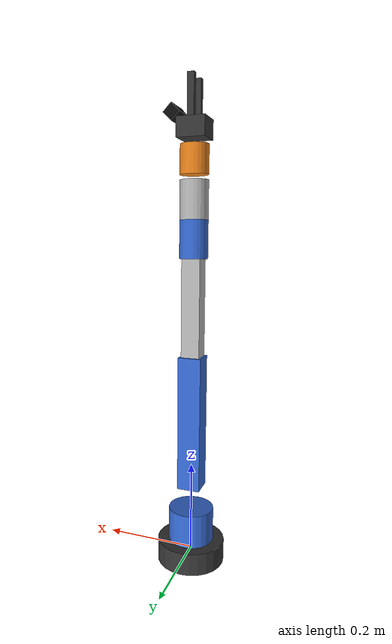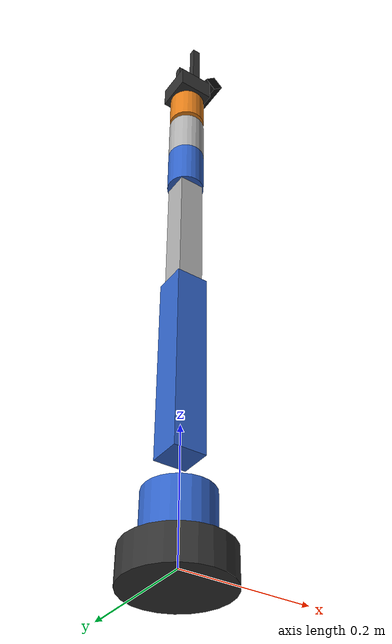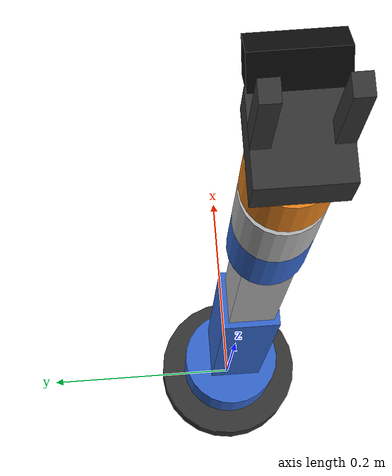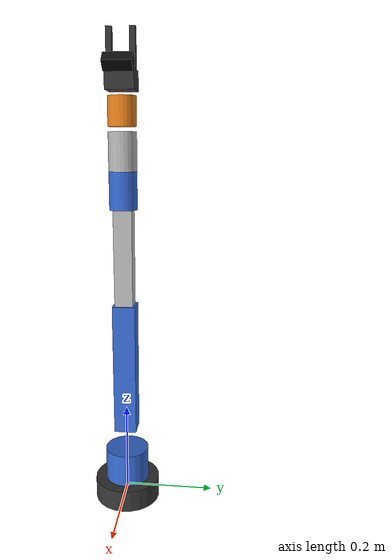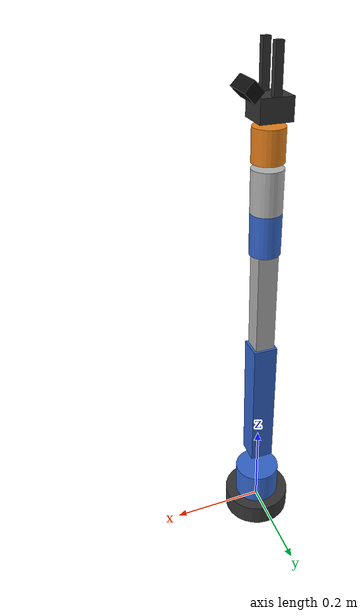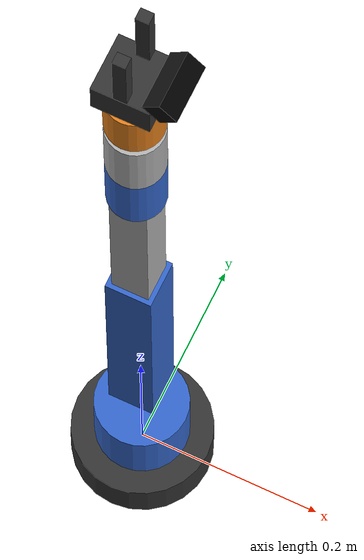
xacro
<?xml version="1.0"?>
<robot xmlns:xacro="http://www.ros.org/wiki/xacro" name="arm6dof">
    <xacro:arg name="initial_positions_file" default="initial_positions.yaml" />

    <!-- Import arm6dof urdf file -->
    <xacro:include filename="$(find robot_description)/urdf/robot_2.urdf.xacro" />

    <!-- Import control_xacro -->
    <xacro:include filename="arm6dof.ros2_control.xacro" />

    <xacro:arm6dof_ros2_control name="FakeSystem" initial_positions_file="$(arg initial_positions_file)"/>

</robot>

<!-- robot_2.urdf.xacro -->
<robot xmlns:xacro="http://www.ros.org/wiki/xacro" name="arm6dof">

  <!-- ── Materials ─────────────────────────────────────────────── -->
  <material name="dark_grey">  <color rgba="0.20 0.20 0.20 1"/> </material>
  <material name="blue">       <color rgba="0.20 0.40 0.80 1"/> </material>
  <material name="light_grey"> <color rgba="0.70 0.70 0.70 1"/> </material>
  <material name="orange">     <color rgba="0.90 0.50 0.10 1"/> </material>
  <material name="black">      <color rgba="0.05 0.05 0.05 1"/> </material>

  <!-- ── Inertia helpers ───────────────────────────────────────── -->
  <xacro:macro name="inertial_cyl" params="mass r h *origin">
    <inertial>
      <xacro:insert_block name="origin"/>
      <mass value="${mass}"/>
      <inertia ixx="${mass*(3*r*r+h*h)/12}" ixy="0" ixz="0"
               iyy="${mass*(3*r*r+h*h)/12}" iyz="0"
               izz="${mass*r*r/2}"/>
    </inertial>
  </xacro:macro>

  <xacro:macro name="inertial_box" params="mass x y z *origin">
    <inertial>
      <xacro:insert_block name="origin"/>
      <mass value="${mass}"/>
      <inertia ixx="${mass*(y*y+z*z)/12}" ixy="0" ixz="0"
               iyy="${mass*(x*x+z*z)/12}" iyz="0"
               izz="${mass*(x*x+y*y)/12}"/>
    </inertial>
  </xacro:macro>

  <!--  LINKS                                                       -->

  <link name="world"/>

  <link name="base_link">
    <visual>
      <geometry><cylinder radius="0.075" length="0.05"/></geometry>
      <material name="dark_grey"/>
    </visual>
    <collision>
      <geometry><cylinder radius="0.075" length="0.05"/></geometry>
    </collision>
    <xacro:inertial_cyl mass="2.0" r="0.075" h="0.05">
      <origin xyz="0 0 0" rpy="0 0 0"/>
    </xacro:inertial_cyl>
  </link>

  <link name="link1">
    <visual>
      <geometry><cylinder radius="0.05" length="0.10"/></geometry>
      <material name="blue"/>
    </visual>
    <collision>
      <geometry><cylinder radius="0.05" length="0.10"/></geometry>
    </collision>
    <xacro:inertial_cyl mass="1.5" r="0.05" h="0.10">
      <origin xyz="0 0 0" rpy="0 0 0"/>
    </xacro:inertial_cyl>
  </link>

  <link name="link2">
    <visual>
      <origin xyz="0 0 0.15"/>
      <geometry><box size="0.05 0.05 0.30"/></geometry>
      <material name="blue"/>
    </visual>
    <collision>
      <origin xyz="0 0 0.15"/>
      <geometry><box size="0.05 0.05 0.30"/></geometry>
    </collision>
    <xacro:inertial_box mass="1.2" x="0.05" y="0.05" z="0.30">
      <origin xyz="0 0 0.15" rpy="0 0 0"/>
    </xacro:inertial_box>
  </link>

  <link name="link3">
    <visual>
      <origin xyz="0 0 0.125"/>
      <geometry><box size="0.04 0.04 0.25"/></geometry>
      <material name="light_grey"/>
    </visual>
    <collision>
      <origin xyz="0 0 0.125"/>
      <geometry><box size="0.04 0.04 0.25"/></geometry>
    </collision>
    <xacro:inertial_box mass="0.9" x="0.04" y="0.04" z="0.25">
      <origin xyz="0 0 0.125" rpy="0 0 0"/>
    </xacro:inertial_box>
  </link>

  <link name="link4">
    <visual>
      <geometry><cylinder radius="0.03" length="0.08"/></geometry>
      <material name="blue"/>
    </visual>
    <collision>
      <geometry><cylinder radius="0.03" length="0.08"/></geometry>
    </collision>
    <xacro:inertial_cyl mass="0.5" r="0.03" h="0.08">
      <origin xyz="0 0 0" rpy="0 0 0"/>
    </xacro:inertial_cyl>
  </link>

  <link name="link5">
    <visual>
      <geometry><cylinder radius="0.03" length="0.08"/></geometry>
      <material name="light_grey"/>
    </visual>
    <collision>
      <geometry><cylinder radius="0.03" length="0.08"/></geometry>
    </collision>
    <xacro:inertial_cyl mass="0.5" r="0.03" h="0.08">
      <origin xyz="0 0 0" rpy="0 0 0"/>
    </xacro:inertial_cyl>
  </link>

  <link name="link6">
    <visual>
      <geometry><cylinder radius="0.03" length="0.06"/></geometry>
      <material name="orange"/>
    </visual>
    <collision>
      <geometry><cylinder radius="0.03" length="0.06"/></geometry>
    </collision>
    <xacro:inertial_cyl mass="0.3" r="0.03" h="0.06">
      <origin xyz="0 0 0" rpy="0 0 0"/>
    </xacro:inertial_cyl>
  </link>

  <link name="gripper_base">
    <visual>
      <geometry><box size="0.06 0.06 0.04"/></geometry>
      <material name="dark_grey"/>
    </visual>
    <collision>
      <geometry><box size="0.06 0.06 0.04"/></geometry>
    </collision>
    <xacro:inertial_box mass="0.20" x="0.06" y="0.06" z="0.04">
      <origin xyz="0 0 0" rpy="0 0 0"/>
    </xacro:inertial_box>
  </link>

  <link name="finger_left">
    <visual>
      <origin xyz="0 0 0.04"/>
      <geometry><box size="0.014 0.012 0.08"/></geometry>
      <material name="dark_grey"/>
    </visual>
    <collision>
      <origin xyz="0 0 0.04"/>
      <geometry><box size="0.014 0.012 0.08"/></geometry>
    </collision>
    <xacro:inertial_box mass="0.05" x="0.014" y="0.012" z="0.08">
      <origin xyz="0 0 0.04" rpy="0 0 0"/>
    </xacro:inertial_box>
  </link>

  <link name="finger_right">
    <visual>
      <origin xyz="0 0 0.04"/>
      <geometry><box size="0.014 0.012 0.08"/></geometry>
      <material name="dark_grey"/>
    </visual>
    <collision>
      <origin xyz="0 0 0.04"/>
      <geometry><box size="0.014 0.012 0.08"/></geometry>
    </collision>
    <xacro:inertial_box mass="0.05" x="0.014" y="0.012" z="0.08">
      <origin xyz="0 0 0.04" rpy="0 0 0"/>
    </xacro:inertial_box>
  </link>

  <!-- ── Depth camera body ─────────────────────────────────────── -->
  <!-- Mounted on gripper_base, offset to the back (+X) so it has  -->
  <!-- a clear view of the workspace below the gripper.             -->
  <link name="camera_link">
    <visual>
      <geometry><box size="0.025 0.060 0.025"/></geometry>
      <material name="black"/>
    </visual>
    <collision>
      <geometry><box size="0.025 0.060 0.025"/></geometry>
    </collision>
    <xacro:inertial_box mass="0.05" x="0.025" y="0.060" z="0.025">
      <origin xyz="0 0 0" rpy="0 0 0"/>
    </xacro:inertial_box>
  </link>

  <!-- ROS optical frame: Z forward, X right, Y down -->
  <link name="camera_optical_frame"/>

  <!--  JOINTS                                                      -->

  <joint name="world_to_base" type="fixed">
    <parent link="world"/>
    <child  link="base_link"/>
    <origin xyz="0 0 0" rpy="0 0 0"/>
  </joint>

  <joint name="joint1" type="revolute">
    <parent link="base_link"/>
    <child  link="link1"/>
    <origin xyz="0 0 0.05" rpy="0 0 0"/>
    <axis xyz="0 0 1"/>
    <limit lower="${-pi}"   upper="${pi}"   effort="150" velocity="${pi}"/>
    <dynamics damping="0.5" friction="0.1"/>
  </joint>

  <joint name="joint2" type="revolute">
    <parent link="link1"/>
    <child  link="link2"/>
    <origin xyz="0 0 0.10" rpy="0 0 0"/>
    <axis xyz="0 1 0"/>
    <limit lower="${-pi/2}" upper="${pi/2}" effort="150" velocity="${pi}"/>
    <dynamics damping="0.5" friction="0.1"/>
  </joint>

  <joint name="joint3" type="revolute">
    <parent link="link2"/>
    <child  link="link3"/>
    <origin xyz="0 0 0.30" rpy="0 0 0"/>
    <axis xyz="0 1 0"/>
    <limit lower="${-3*pi/4}" upper="${3*pi/4}" effort="100" velocity="${pi}"/>
    <dynamics damping="0.5" friction="0.1"/>
  </joint>

  <joint name="joint4" type="revolute">
    <parent link="link3"/>
    <child  link="link4"/>
    <origin xyz="0 0 0.25" rpy="0 0 0"/>
    <axis xyz="1 0 0"/>
    <limit lower="${-pi}"   upper="${pi}"   effort="50" velocity="${pi}"/>
    <dynamics damping="0.3" friction="0.05"/>
  </joint>

  <joint name="joint5" type="revolute">
    <parent link="link4"/>
    <child  link="link5"/>
    <origin xyz="0 0 0.08" rpy="0 0 0"/>
    <axis xyz="0 1 0"/>
    <limit lower="${-pi/2}" upper="${pi/2}" effort="50" velocity="${pi}"/>
    <dynamics damping="0.3" friction="0.05"/>
  </joint>

  <joint name="joint6" type="revolute">
    <parent link="link5"/>
    <child  link="link6"/>
    <origin xyz="0 0 0.08" rpy="0 0 0"/>
    <axis xyz="0 0 1"/>
    <limit lower="${-pi}"   upper="${pi}"   effort="30" velocity="${pi}"/>
    <dynamics damping="0.2" friction="0.05"/>
  </joint>

  <joint name="gripper_base_joint" type="fixed">
    <parent link="link6"/>
    <child  link="gripper_base"/>
    <origin xyz="0 0 0.06" rpy="0 0 0"/>
  </joint>

  <joint name="finger_left_joint" type="prismatic">
    <parent link="gripper_base"/>
    <child  link="finger_left"/>
    <origin xyz="0  0.024 0.02" rpy="0 0 0"/>
    <axis xyz="0 1 0"/>
    <limit lower="0.0" upper="0.03" effort="200" velocity="0.1"/>
    <dynamics damping="0.1" friction="0.05"/>
  </joint>

  <joint name="finger_right_joint" type="prismatic">
    <parent link="gripper_base"/>
    <child  link="finger_right"/>
    <origin xyz="0 -0.024 0.02" rpy="0 0 0"/>
    <axis xyz="0 -1 0"/>
    <limit lower="0.0" upper="0.03" effort="200" velocity="0.1"/>
    <dynamics damping="0.1" friction="0.05"/>
    <mimic joint="finger_left_joint" multiplier="1" offset="0"/>
  </joint>

  <!-- camera_link sits behind and above the gripper palm, looking down -->
  <!-- xyz: +X = back along forearm, Z = up from gripper_base frame     -->
  <joint name="camera_joint" type="fixed">
    <parent link="gripper_base"/>
    <child  link="camera_link"/>
    <origin xyz="0.04 0 0.03" rpy="0 ${pi/4} 0"/>
  </joint>

  <!-- optical frame: rotate so Z points forward out of the lens        -->
  <joint name="camera_optical_joint" type="fixed">
    <parent link="camera_link"/>
    <child  link="camera_optical_frame"/>
    <origin xyz="0 0 0" rpy="${-pi/2} 0 ${-pi/2}"/>
  </joint>

  <!--  ROS2 CONTROL                                                -->

  <ros2_control name="arm6dof_system" type="system">
    <hardware>
      <plugin>gz_ros2_control/GazeboSimSystem</plugin>
    </hardware>

    <joint name="joint1">
      <command_interface name="position">
        <param name="min">${-pi}</param>
        <param name="max">${pi}</param>
      </command_interface>
      <state_interface name="position"><param name="initial_value">0.0</param></state_interface>
      <state_interface name="velocity"/>
      <state_interface name="effort"/>
    </joint>

    <joint name="joint2">
      <command_interface name="position">
        <param name="min">${-pi/2}</param>
        <param name="max">${pi/2}</param>
      </command_interface>
      <state_interface name="position"><param name="initial_value">0.0</param></state_interface>
      <state_interface name="velocity"/>
      <state_interface name="effort"/>
    </joint>

    <joint name="joint3">
      <command_interface name="position">
        <param name="min">${-3*pi/4}</param>
        <param name="max">${3*pi/4}</param>
      </command_interface>
      <state_interface name="position"><param name="initial_value">0.0</param></state_interface>
      <state_interface name="velocity"/>
      <state_interface name="effort"/>
    </joint>

    <joint name="joint4">
      <command_interface name="position">
        <param name="min">${-pi}</param>
        <param name="max">${pi}</param>
      </command_interface>
      <state_interface name="position"><param name="initial_value">0.0</param></state_interface>
      <state_interface name="velocity"/>
      <state_interface name="effort"/>
    </joint>

    <joint name="joint5">
      <command_interface name="position">
        <param name="min">${-pi/2}</param>
        <param name="max">${pi/2}</param>
      </command_interface>
      <state_interface name="position"><param name="initial_value">0.0</param></state_interface>
      <state_interface name="velocity"/>
      <state_interface name="effort"/>
    </joint>

    <joint name="joint6">
      <command_interface name="position">
        <param name="min">${-pi}</param>
        <param name="max">${pi}</param>
      </command_interface>
      <state_interface name="position"><param name="initial_value">0.0</param></state_interface>
      <state_interface name="velocity"/>
      <state_interface name="effort"/>
    </joint>

    <joint name="finger_left_joint">
      <command_interface name="position">
        <param name="min">0.0</param>
        <param name="max">0.03</param>
      </command_interface>
      <state_interface name="position"><param name="initial_value">0.0</param></state_interface>
      <state_interface name="velocity"/>
      <state_interface name="effort"/>
    </joint>

    <joint name="finger_right_joint">
      <state_interface name="position"><param name="initial_value">0.0</param></state_interface>
      <state_interface name="velocity"/>
      <state_interface name="effort"/>
    </joint>

  </ros2_control>

  <!-- ── Gazebo: ros2_control plugin ─────────────────────────── -->
  <gazebo>
    <plugin filename="gz_ros2_control-system"
            name="gz_ros2_control::GazeboSimROS2ControlPlugin">
      <parameters>$(find robot_simulation)/config/ros2_controllers.yaml</parameters>
    </plugin>
  </gazebo>

  <!-- ── Gazebo: finger friction ────────────────────────────────── -->
  <gazebo reference="finger_left">
    <mu1>5.0</mu1>
    <mu2>5.0</mu2>
    <kp>1e6</kp>
    <kd>1.0</kd>
    <minDepth>0.001</minDepth>
    <maxVel>0.1</maxVel>
  </gazebo>
  <gazebo reference="finger_right">
    <mu1>5.0</mu1>
    <mu2>5.0</mu2>
    <kp>1e6</kp>
    <kd>1.0</kd>
    <minDepth>0.001</minDepth>
    <maxVel>0.1</maxVel>
  </gazebo>

  <!-- ── Gazebo: RGBD camera sensor ──────────────────────────── -->
  <!-- Topics (via ros_gz_bridge):                                 -->
  <!--   /camera/image        → RGB image                          -->
  <!--   /camera/depth_image  → depth image (float32, metres)      -->
  <!--   /camera/points       → PointCloud2                        -->
  <!--   /camera/camera_info  → CameraInfo                         -->
  <gazebo reference="camera_link">
    <sensor name="depth_camera" type="rgbd_camera">
      <camera>
        <horizontal_fov>1.047</horizontal_fov>  <!-- 60 deg -->
        <image>
          <width>640</width>
          <height>480</height>
          <format>R8G8B8</format>
        </image>
        <clip>
          <near>0.05</near>
          <far>5.0</far>
        </clip>
        <depth_camera>
          <clip>
            <near>0.05</near>
            <far>5.0</far>
          </clip>
        </depth_camera>
        <noise>
          <type>gaussian</type>
          <mean>0.0</mean>
          <stddev>0.005</stddev>
        </noise>
      </camera>
      <always_on>1</always_on>
      <update_rate>30</update_rate>
      <visualize>false</visualize>
      <topic>/camera</topic>
      <gz_frame_id>camera_optical_frame</gz_frame_id>
    </sensor>
  </gazebo>

</robot>
